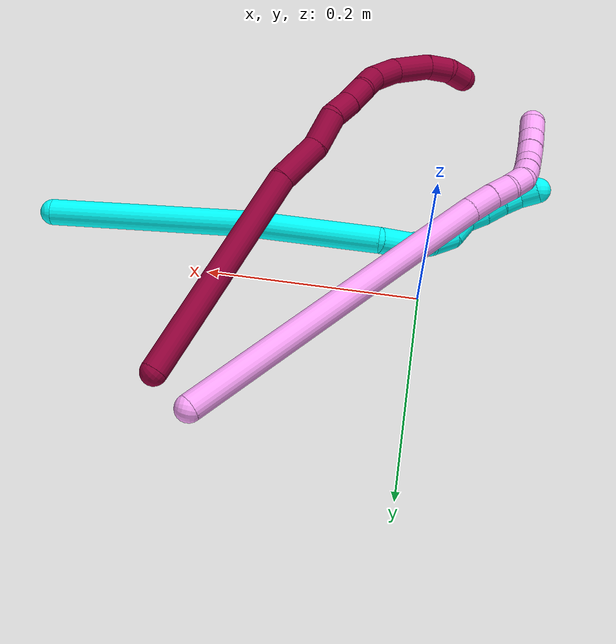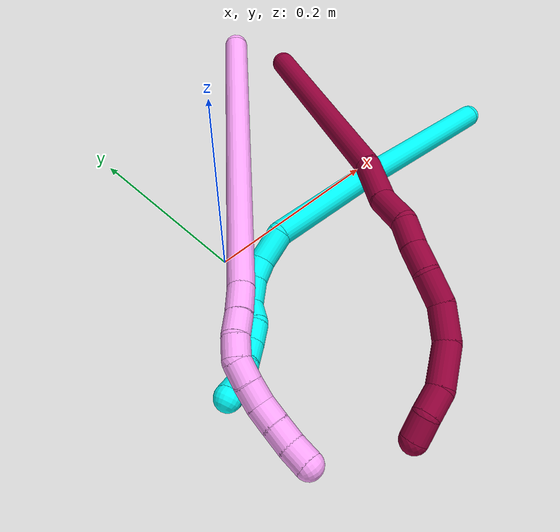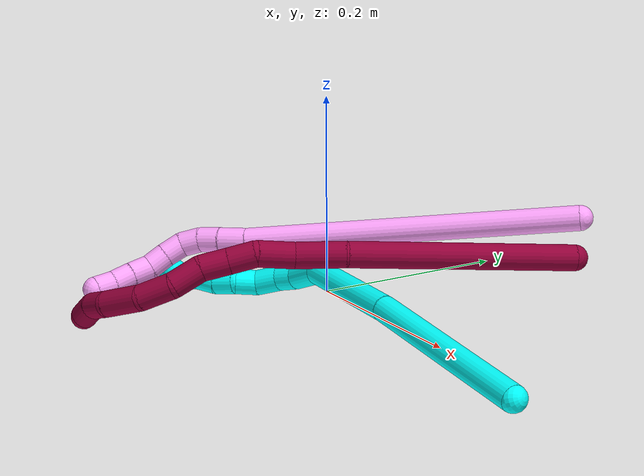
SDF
<sdf version="1.7">
 <world name="default">
  <model name="bin">
   <static>1</static>
   <link name="bottom">
    <collision name="collision-bottom">
     <pose>0 0 -0.01 0 -0 0</pose>
     <geometry><box><size>0.8 0.6 0.02</size></box></geometry>
     <surface>
      <friction><ode><mu>100</mu><mu2>100</mu2></ode></friction>
      <contact><collide_bitmask>65535</collide_bitmask></contact>
     </surface>
    </collision>
   </link>
   <link name="west_wall">
    <collision name="collision-west_wall">
     <pose>-0.41 0 0.1 0 -0 0</pose>
     <geometry><box><size>0.02 0.6 0.2</size></box></geometry>
     <surface>
      <friction><ode><mu>100</mu><mu2>100</mu2></ode></friction>
      <contact><collide_bitmask>65535</collide_bitmask></contact>
     </surface>
    </collision>
   </link>
   <link name="east_wall">
    <collision name="collision-east_wall">
     <pose>0.41 0 0.1 0 -0 0</pose>
     <geometry><box><size>0.02 0.6 0.2</size></box></geometry>
     <surface>
      <friction><ode><mu>100</mu><mu2>100</mu2></ode></friction>
      <contact><collide_bitmask>65535</collide_bitmask></contact>
     </surface>
    </collision>
   </link>
   <link name="south_wall">
    <collision name="collision-south_wall">
     <pose>0 -0.31 0.1 0 -0 0</pose>
     <geometry><box><size>0.8 0.02 0.2</size></box></geometry>
     <surface>
      <friction><ode><mu>100</mu><mu2>100</mu2></ode></friction>
      <contact><collide_bitmask>65535</collide_bitmask></contact>
     </surface>
    </collision>
   </link>
   <link name="north_wall">
    <collision name="collision-north_wall">
     <pose>0 0.31 0.1 0 -0 0</pose>
     <geometry><box><size>0.8 0.02 0.2</size></box></geometry>
     <surface>
      <friction><ode><mu>100</mu><mu2>100</mu2></ode></friction>
      <contact><collide_bitmask>65535</collide_bitmask></contact>
     </surface>
    </collision>
   </link>
  </model>
  <model name="3">
   <static>0</static>
   <link name="3">
    <collision name="collision-cylinder-e_1_1_4">
     <pose>-0.049913 0.018921 -0.081487 -2.91344 -0.537953 2.35376</pose>
     <geometry><cylinder><radius>0.0125</radius><length>0.194827</length></cylinder></geometry>
     <surface>
      <friction><ode><mu>1.16</mu><mu2>1.16</mu2><slip1>0</slip1><slip2>0</slip2></ode></friction>
      <contact><ode><kp>1e+06</kp><kd>1</kd><max_vel>0</max_vel><min_depth>0.001</min_depth></ode></contact>
     </surface>
    </collision>
    <visual name="visual-cylinder-e_1_1_4">
     <pose>-0.049913 0.018921 -0.081487 -2.91344 -0.537953 2.35376</pose>
     <geometry><cylinder><radius>0.0125</radius><length>0.194827</length></cylinder></geometry>
     <material><ambient>0.003922 1 0.996078 1</ambient></material>
    </visual>
    <collision name="collision-cylinder-e_2_4_5">
     <pose>-0.126553 0.052378 -0.21639 -2.8759 -0.4498 2.08424</pose>
     <geometry><cylinder><radius>0.0125</radius><length>0.122946</length></cylinder></geometry>
     <surface>
      <friction><ode><mu>1.16</mu><mu2>1.16</mu2><slip1>0</slip1><slip2>0</slip2></ode></friction>
      <contact><ode><kp>1e+06</kp><kd>1</kd><max_vel>0</max_vel><min_depth>0.001</min_depth></ode></contact>
     </surface>
    </collision>
    <visual name="visual-cylinder-e_2_4_5">
     <pose>-0.126553 0.052378 -0.21639 -2.8759 -0.4498 2.08424</pose>
     <geometry><cylinder><radius>0.0125</radius><length>0.122946</length></cylinder></geometry>
     <material><ambient>0.003922 1 0.996078 1</ambient></material>
    </visual>
    <collision name="collision-cylinder-e_3_5_6">
     <pose>-0.153299 0.069143 -0.285978 -3.00466 -0.001099 0.016027</pose>
     <geometry><cylinder><radius>0.0125</radius><length>0.03265</length></cylinder></geometry>
     <surface>
      <friction><ode><mu>1.16</mu><mu2>1.16</mu2><slip1>0</slip1><slip2>0</slip2></ode></friction>
      <contact><ode><kp>1e+06</kp><kd>1</kd><max_vel>0</max_vel><min_depth>0.001</min_depth></ode></contact>
     </surface>
    </collision>
    <visual name="visual-cylinder-e_3_5_6">
     <pose>-0.153299 0.069143 -0.285978 -3.00466 -0.001099 0.016027</pose>
     <geometry><cylinder><radius>0.0125</radius><length>0.03265</length></cylinder></geometry>
     <material><ambient>0.003922 1 0.996078 1</ambient></material>
    </visual>
    <collision name="collision-cylinder-e_4_6_7">
     <pose>-0.154217 0.070141 -0.312356 3.02164 -0.087404 -1.25888</pose>
     <geometry><cylinder><radius>0.0125</radius><length>0.020639</length></cylinder></geometry>
     <surface>
      <friction><ode><mu>1.16</mu><mu2>1.16</mu2><slip1>0</slip1><slip2>0</slip2></ode></friction>
      <contact><ode><kp>1e+06</kp><kd>1</kd><max_vel>0</max_vel><min_depth>0.001</min_depth></ode></contact>
     </surface>
    </collision>
    <visual name="visual-cylinder-e_4_6_7">
     <pose>-0.154217 0.070141 -0.312356 3.02164 -0.087404 -1.25888</pose>
     <geometry><cylinder><radius>0.0125</radius><length>0.020639</length></cylinder></geometry>
     <material><ambient>0.003922 1 0.996078 1</ambient></material>
    </visual>
    <collision name="collision-cylinder-e_5_7_8">
     <pose>-0.154646 0.06493 -0.334745 2.82575 0.036788 0.230017</pose>
     <geometry><cylinder><radius>0.0125</radius><length>0.02565</length></cylinder></geometry>
     <surface>
      <friction><ode><mu>1.16</mu><mu2>1.16</mu2><slip1>0</slip1><slip2>0</slip2></ode></friction>
      <contact><ode><kp>1e+06</kp><kd>1</kd><max_vel>0</max_vel><min_depth>0.001</min_depth></ode></contact>
     </surface>
    </collision>
    <visual name="visual-cylinder-e_5_7_8">
     <pose>-0.154646 0.06493 -0.334745 2.82575 0.036788 0.230017</pose>
     <geometry><cylinder><radius>0.0125</radius><length>0.02565</length></cylinder></geometry>
     <material><ambient>0.003922 1 0.996078 1</ambient></material>
    </visual>
    <collision name="collision-cylinder-e_6_8_9">
     <pose>-0.15569 0.053146 -0.35451 2.34193 -0.138337 -0.324986</pose>
     <geometry><cylinder><radius>0.0125</radius><length>0.021971</length></cylinder></geometry>
     <surface>
      <friction><ode><mu>1.16</mu><mu2>1.16</mu2><slip1>0</slip1><slip2>0</slip2></ode></friction>
      <contact><ode><kp>1e+06</kp><kd>1</kd><max_vel>0</max_vel><min_depth>0.001</min_depth></ode></contact>
     </surface>
    </collision>
    <visual name="visual-cylinder-e_6_8_9">
     <pose>-0.15569 0.053146 -0.35451 2.34193 -0.138337 -0.324986</pose>
     <geometry><cylinder><radius>0.0125</radius><length>0.021971</length></cylinder></geometry>
     <material><ambient>0.003922 1 0.996078 1</ambient></material>
    </visual>
    <collision name="collision-cylinder-e_7_9_10">
     <pose>-0.15859 0.041814 -0.371982 2.79876 -0.131156 -0.725164</pose>
     <geometry><cylinder><radius>0.0125</radius><length>0.021181</length></cylinder></geometry>
     <surface>
      <friction><ode><mu>1.16</mu><mu2>1.16</mu2><slip1>0</slip1><slip2>0</slip2></ode></friction>
      <contact><ode><kp>1e+06</kp><kd>1</kd><max_vel>0</max_vel><min_depth>0.001</min_depth></ode></contact>
     </surface>
    </collision>
    <visual name="visual-cylinder-e_7_9_10">
     <pose>-0.15859 0.041814 -0.371982 2.79876 -0.131156 -0.725164</pose>
     <geometry><cylinder><radius>0.0125</radius><length>0.021181</length></cylinder></geometry>
     <material><ambient>0.003922 1 0.996078 1</ambient></material>
    </visual>
    <collision name="collision-cylinder-e_8_10_11">
     <pose>-0.163645 0.034291 -0.390338 2.70088 -0.373657 -1.40191</pose>
     <geometry><cylinder><radius>0.0125</radius><length>0.020112</length></cylinder></geometry>
     <surface>
      <friction><ode><mu>1.16</mu><mu2>1.16</mu2><slip1>0</slip1><slip2>0</slip2></ode></friction>
      <contact><ode><kp>1e+06</kp><kd>1</kd><max_vel>0</max_vel><min_depth>0.001</min_depth></ode></contact>
     </surface>
    </collision>
    <visual name="visual-cylinder-e_8_10_11">
     <pose>-0.163645 0.034291 -0.390338 2.70088 -0.373657 -1.40191</pose>
     <geometry><cylinder><radius>0.0125</radius><length>0.020112</length></cylinder></geometry>
     <material><ambient>0.003922 1 0.996078 1</ambient></material>
    </visual>
    <collision name="collision-cylinder-e_9_11_12">
     <pose>-0.169108 0.026731 -0.407982 2.77096 -0.180124 -0.897819</pose>
     <geometry><cylinder><radius>0.0125</radius><length>0.020013</length></cylinder></geometry>
     <surface>
      <friction><ode><mu>1.16</mu><mu2>1.16</mu2><slip1>0</slip1><slip2>0</slip2></ode></friction>
      <contact><ode><kp>1e+06</kp><kd>1</kd><max_vel>0</max_vel><min_depth>0.001</min_depth></ode></contact>
     </surface>
    </collision>
    <visual name="visual-cylinder-e_9_11_12">
     <pose>-0.169108 0.026731 -0.407982 2.77096 -0.180124 -0.897819</pose>
     <geometry><cylinder><radius>0.0125</radius><length>0.020013</length></cylinder></geometry>
     <material><ambient>0.003922 1 0.996078 1</ambient></material>
    </visual>
    <collision name="collision-cylinder-e_10_12_2">
     <pose>-0.176873 0.021967 -0.425096 2.99179 -0.639542 -2.69587</pose>
     <geometry><cylinder><radius>0.0125</radius><length>0.020011</length></cylinder></geometry>
     <surface>
      <friction><ode><mu>1.16</mu><mu2>1.16</mu2><slip1>0</slip1><slip2>0</slip2></ode></friction>
      <contact><ode><kp>1e+06</kp><kd>1</kd><max_vel>0</max_vel><min_depth>0.001</min_depth></ode></contact>
     </surface>
    </collision>
    <visual name="visual-cylinder-e_10_12_2">
     <pose>-0.176873 0.021967 -0.425096 2.99179 -0.639542 -2.69587</pose>
     <geometry><cylinder><radius>0.0125</radius><length>0.020011</length></cylinder></geometry>
     <material><ambient>0.003922 1 0.996078 1</ambient></material>
    </visual>
    <collision name="collision-sphere-2">
     <pose>-0.182845 0.020769 -0.433035 0 -0 0</pose>
     <geometry><sphere><radius>0.0125</radius></sphere></geometry>
     <surface>
      <friction><ode><mu>1.16</mu><mu2>1.16</mu2><slip1>0</slip1><slip2>0</slip2></ode></friction>
      <contact><ode><kp>1e+06</kp><kd>1</kd><max_vel>0</max_vel><min_depth>0.001</min_depth></ode></contact>
     </surface>
    </collision>
    <visual name="visual-sphere-2">
     <pose>-0.182845 0.020769 -0.433035 0 -0 0</pose>
     <geometry><sphere><radius>0.0125</radius></sphere></geometry>
     <material><ambient>0.003922 1 0.996078 1</ambient></material>
    </visual>
    <collision name="collision-sphere-12">
     <pose>-0.170901 0.023166 -0.417158 0 -0 0</pose>
     <geometry><sphere><radius>0.0125</radius></sphere></geometry>
     <surface>
      <friction><ode><mu>1.16</mu><mu2>1.16</mu2><slip1>0</slip1><slip2>0</slip2></ode></friction>
      <contact><ode><kp>1e+06</kp><kd>1</kd><max_vel>0</max_vel><min_depth>0.001</min_depth></ode></contact>
     </surface>
    </collision>
    <visual name="visual-sphere-12">
     <pose>-0.170901 0.023166 -0.417158 0 -0 0</pose>
     <geometry><sphere><radius>0.0125</radius></sphere></geometry>
     <material><ambient>0.003922 1 0.996078 1</ambient></material>
    </visual>
    <collision name="collision-sphere-11">
     <pose>-0.167316 0.030297 -0.398805 0 -0 0</pose>
     <geometry><sphere><radius>0.0125</radius></sphere></geometry>
     <surface>
      <friction><ode><mu>1.16</mu><mu2>1.16</mu2><slip1>0</slip1><slip2>0</slip2></ode></friction>
      <contact><ode><kp>1e+06</kp><kd>1</kd><max_vel>0</max_vel><min_depth>0.001</min_depth></ode></contact>
     </surface>
    </collision>
    <visual name="visual-sphere-11">
     <pose>-0.167316 0.030297 -0.398805 0 -0 0</pose>
     <geometry><sphere><radius>0.0125</radius></sphere></geometry>
     <material><ambient>0.003922 1 0.996078 1</ambient></material>
    </visual>
    <collision name="collision-sphere-10">
     <pose>-0.159975 0.038285 -0.381871 0 -0 0</pose>
     <geometry><sphere><radius>0.0125</radius></sphere></geometry>
     <surface>
      <friction><ode><mu>1.16</mu><mu2>1.16</mu2><slip1>0</slip1><slip2>0</slip2></ode></friction>
      <contact><ode><kp>1e+06</kp><kd>1</kd><max_vel>0</max_vel><min_depth>0.001</min_depth></ode></contact>
     </surface>
    </collision>
    <visual name="visual-sphere-10">
     <pose>-0.159975 0.038285 -0.381871 0 -0 0</pose>
     <geometry><sphere><radius>0.0125</radius></sphere></geometry>
     <material><ambient>0.003922 1 0.996078 1</ambient></material>
    </visual>
    <collision name="collision-sphere-9">
     <pose>-0.157204 0.045344 -0.362093 0 -0 0</pose>
     <geometry><sphere><radius>0.0125</radius></sphere></geometry>
     <surface>
      <friction><ode><mu>1.16</mu><mu2>1.16</mu2><slip1>0</slip1><slip2>0</slip2></ode></friction>
      <contact><ode><kp>1e+06</kp><kd>1</kd><max_vel>0</max_vel><min_depth>0.001</min_depth></ode></contact>
     </surface>
    </collision>
    <visual name="visual-sphere-9">
     <pose>-0.157204 0.045344 -0.362093 0 -0 0</pose>
     <geometry><sphere><radius>0.0125</radius></sphere></geometry>
     <material><ambient>0.003922 1 0.996078 1</ambient></material>
    </visual>
    <collision name="collision-sphere-4">
     <pose>-0.099825 0.037842 -0.162974 0 -0 0</pose>
     <geometry><sphere><radius>0.0125</radius></sphere></geometry>
     <surface>
      <friction><ode><mu>1.16</mu><mu2>1.16</mu2><slip1>0</slip1><slip2>0</slip2></ode></friction>
      <contact><ode><kp>1e+06</kp><kd>1</kd><max_vel>0</max_vel><min_depth>0.001</min_depth></ode></contact>
     </surface>
    </collision>
    <visual name="visual-sphere-4">
     <pose>-0.099825 0.037842 -0.162974 0 -0 0</pose>
     <geometry><sphere><radius>0.0125</radius></sphere></geometry>
     <material><ambient>0.003922 1 0.996078 1</ambient></material>
    </visual>
    <collision name="collision-sphere-1">
     <geometry><sphere><radius>0.0125</radius></sphere></geometry>
     <surface>
      <friction><ode><mu>1.16</mu><mu2>1.16</mu2><slip1>0</slip1><slip2>0</slip2></ode></friction>
      <contact><ode><kp>1e+06</kp><kd>1</kd><max_vel>0</max_vel><min_depth>0.001</min_depth></ode></contact>
     </surface>
    </collision>
    <visual name="visual-sphere-1">
     <geometry><sphere><radius>0.0125</radius></sphere></geometry>
     <material><ambient>0.003922 1 0.996078 1</ambient></material>
    </visual>
    <collision name="collision-sphere-8">
     <pose>-0.154175 0.060949 -0.346927 0 -0 0</pose>
     <geometry><sphere><radius>0.0125</radius></sphere></geometry>
     <surface>
      <friction><ode><mu>1.16</mu><mu2>1.16</mu2><slip1>0</slip1><slip2>0</slip2></ode></friction>
      <contact><ode><kp>1e+06</kp><kd>1</kd><max_vel>0</max_vel><min_depth>0.001</min_depth></ode></contact>
     </surface>
    </collision>
    <visual name="visual-sphere-8">
     <pose>-0.154175 0.060949 -0.346927 0 -0 0</pose>
     <geometry><sphere><radius>0.0125</radius></sphere></geometry>
     <material><ambient>0.003922 1 0.996078 1</ambient></material>
    </visual>
    <collision name="collision-sphere-5">
     <pose>-0.153281 0.066914 -0.269806 0 -0 0</pose>
     <geometry><sphere><radius>0.0125</radius></sphere></geometry>
     <surface>
      <friction><ode><mu>1.16</mu><mu2>1.16</mu2><slip1>0</slip1><slip2>0</slip2></ode></friction>
      <contact><ode><kp>1e+06</kp><kd>1</kd><max_vel>0</max_vel><min_depth>0.001</min_depth></ode></contact>
     </surface>
    </collision>
    <visual name="visual-sphere-5">
     <pose>-0.153281 0.066914 -0.269806 0 -0 0</pose>
     <geometry><sphere><radius>0.0125</radius></sphere></geometry>
     <material><ambient>0.003922 1 0.996078 1</ambient></material>
    </visual>
    <collision name="collision-sphere-6">
     <pose>-0.153317 0.071371 -0.30215 0 -0 0</pose>
     <geometry><sphere><radius>0.0125</radius></sphere></geometry>
     <surface>
      <friction><ode><mu>1.16</mu><mu2>1.16</mu2><slip1>0</slip1><slip2>0</slip2></ode></friction>
      <contact><ode><kp>1e+06</kp><kd>1</kd><max_vel>0</max_vel><min_depth>0.001</min_depth></ode></contact>
     </surface>
    </collision>
    <visual name="visual-sphere-6">
     <pose>-0.153317 0.071371 -0.30215 0 -0 0</pose>
     <geometry><sphere><radius>0.0125</radius></sphere></geometry>
     <material><ambient>0.003922 1 0.996078 1</ambient></material>
    </visual>
    <collision name="collision-sphere-7">
     <pose>-0.155118 0.068911 -0.322563 0 -0 0</pose>
     <geometry><sphere><radius>0.0125</radius></sphere></geometry>
     <surface>
      <friction><ode><mu>1.16</mu><mu2>1.16</mu2><slip1>0</slip1><slip2>0</slip2></ode></friction>
      <contact><ode><kp>1e+06</kp><kd>1</kd><max_vel>0</max_vel><min_depth>0.001</min_depth></ode></contact>
     </surface>
    </collision>
    <visual name="visual-sphere-7">
     <pose>-0.155118 0.068911 -0.322563 0 -0 0</pose>
     <geometry><sphere><radius>0.0125</radius></sphere></geometry>
     <material><ambient>0.003922 1 0.996078 1</ambient></material>
    </visual>
    <inertial>
     <pose>-0.108866 0.038428 -0.21408 0 -0 0</pose>
     <mass>0.5</mass>
     <inertia>
      <ixx>4.7e-05</ixx>
      <ixy>0</ixy>
      <ixz>0</ixz>
      <iyy>0.001064</iyy>
      <iyz>0</iyz>
      <izz>0.000202</izz>
     </inertia>
    </inertial>
   </link>
   <pose>0.358483 -0.038066 0.011488 -0.608325 1.1259 -0.324609</pose>
  </model>
  <model name="4">
   <static>0</static>
   <link name="4">
    <collision name="collision-cylinder-e_1_1_4">
     <pose>-0.075707 -0.108644 0.099093 0.831338 -0.475456 -0.213096</pose>
     <geometry><cylinder><radius>0.0125</radius><length>0.330784</length></cylinder></geometry>
     <surface>
      <friction><ode><mu>1.16</mu><mu2>1.16</mu2><slip1>0</slip1><slip2>0</slip2></ode></friction>
      <contact><ode><kp>1e+06</kp><kd>1</kd><max_vel>0</max_vel><min_depth>0.001</min_depth></ode></contact>
     </surface>
    </collision>
    <visual name="visual-cylinder-e_1_1_4">
     <pose>-0.075707 -0.108644 0.099093 0.831338 -0.475456 -0.213096</pose>
     <geometry><cylinder><radius>0.0125</radius><length>0.330784</length></cylinder></geometry>
     <material><ambient>1 0.65098 0.996078 1</ambient></material>
    </visual>
    <collision name="collision-cylinder-e_2_4_5">
     <pose>-0.156444 -0.226267 0.20717 0.785189 -0.377009 -0.157664</pose>
     <geometry><cylinder><radius>0.0125</radius><length>0.027324</length></cylinder></geometry>
     <surface>
      <friction><ode><mu>1.16</mu><mu2>1.16</mu2><slip1>0</slip1><slip2>0</slip2></ode></friction>
      <contact><ode><kp>1e+06</kp><kd>1</kd><max_vel>0</max_vel><min_depth>0.001</min_depth></ode></contact>
     </surface>
    </collision>
    <visual name="visual-cylinder-e_2_4_5">
     <pose>-0.156444 -0.226267 0.20717 0.785189 -0.377009 -0.157664</pose>
     <geometry><cylinder><radius>0.0125</radius><length>0.027324</length></cylinder></geometry>
     <material><ambient>1 0.65098 0.996078 1</ambient></material>
    </visual>
    <collision name="collision-cylinder-e_3_5_6">
     <pose>-0.165422 -0.241646 0.223753 0.69988 -0.378386 -0.139541</pose>
     <geometry><cylinder><radius>0.0125</radius><length>0.02138</length></cylinder></geometry>
     <surface>
      <friction><ode><mu>1.16</mu><mu2>1.16</mu2><slip1>0</slip1><slip2>0</slip2></ode></friction>
      <contact><ode><kp>1e+06</kp><kd>1</kd><max_vel>0</max_vel><min_depth>0.001</min_depth></ode></contact>
     </surface>
    </collision>
    <visual name="visual-cylinder-e_3_5_6">
     <pose>-0.165422 -0.241646 0.223753 0.69988 -0.378386 -0.139541</pose>
     <geometry><cylinder><radius>0.0125</radius><length>0.02138</length></cylinder></geometry>
     <material><ambient>1 0.65098 0.996078 1</ambient></material>
    </visual>
    <collision name="collision-cylinder-e_4_6_7">
     <pose>-0.175478 -0.253644 0.237211 0.762716 -0.645728 -0.266725</pose>
     <geometry><cylinder><radius>0.0125</radius><length>0.020295</length></cylinder></geometry>
     <surface>
      <friction><ode><mu>1.16</mu><mu2>1.16</mu2><slip1>0</slip1><slip2>0</slip2></ode></friction>
      <contact><ode><kp>1e+06</kp><kd>1</kd><max_vel>0</max_vel><min_depth>0.001</min_depth></ode></contact>
     </surface>
    </collision>
    <visual name="visual-cylinder-e_4_6_7">
     <pose>-0.175478 -0.253644 0.237211 0.762716 -0.645728 -0.266725</pose>
     <geometry><cylinder><radius>0.0125</radius><length>0.020295</length></cylinder></geometry>
     <material><ambient>1 0.65098 0.996078 1</ambient></material>
    </visual>
    <collision name="collision-cylinder-e_5_7_8">
     <pose>-0.190091 -0.264386 0.244763 1.25265 -1.00394 -0.756014</pose>
     <geometry><cylinder><radius>0.0125</radius><length>0.020168</length></cylinder></geometry>
     <surface>
      <friction><ode><mu>1.16</mu><mu2>1.16</mu2><slip1>0</slip1><slip2>0</slip2></ode></friction>
      <contact><ode><kp>1e+06</kp><kd>1</kd><max_vel>0</max_vel><min_depth>0.001</min_depth></ode></contact>
     </surface>
    </collision>
    <visual name="visual-cylinder-e_5_7_8">
     <pose>-0.190091 -0.264386 0.244763 1.25265 -1.00394 -0.756014</pose>
     <geometry><cylinder><radius>0.0125</radius><length>0.020168</length></cylinder></geometry>
     <material><ambient>1 0.65098 0.996078 1</ambient></material>
    </visual>
    <collision name="collision-cylinder-e_6_8_9">
     <pose>-0.20738 -0.274234 0.247337 1.38594 -1.07178 -0.916235</pose>
     <geometry><cylinder><radius>0.0125</radius><length>0.020004</length></cylinder></geometry>
     <surface>
      <friction><ode><mu>1.16</mu><mu2>1.16</mu2><slip1>0</slip1><slip2>0</slip2></ode></friction>
      <contact><ode><kp>1e+06</kp><kd>1</kd><max_vel>0</max_vel><min_depth>0.001</min_depth></ode></contact>
     </surface>
    </collision>
    <visual name="visual-cylinder-e_6_8_9">
     <pose>-0.20738 -0.274234 0.247337 1.38594 -1.07178 -0.916235</pose>
     <geometry><cylinder><radius>0.0125</radius><length>0.020004</length></cylinder></geometry>
     <material><ambient>1 0.65098 0.996078 1</ambient></material>
    </visual>
    <collision name="collision-cylinder-e_7_9_10">
     <pose>-0.22324 -0.286008 0.248496 1.53131 -0.785584 -0.758042</pose>
     <geometry><cylinder><radius>0.0125</radius><length>0.020015</length></cylinder></geometry>
     <surface>
      <friction><ode><mu>1.16</mu><mu2>1.16</mu2><slip1>0</slip1><slip2>0</slip2></ode></friction>
      <contact><ode><kp>1e+06</kp><kd>1</kd><max_vel>0</max_vel><min_depth>0.001</min_depth></ode></contact>
     </surface>
    </collision>
    <visual name="visual-cylinder-e_7_9_10">
     <pose>-0.22324 -0.286008 0.248496 1.53131 -0.785584 -0.758042</pose>
     <geometry><cylinder><radius>0.0125</radius><length>0.020015</length></cylinder></geometry>
     <material><ambient>1 0.65098 0.996078 1</ambient></material>
    </visual>
    <collision name="collision-cylinder-e_8_10_11">
     <pose>-0.237749 -0.299781 0.248827 1.56302 -0.836866 -0.831104</pose>
     <geometry><cylinder><radius>0.0125</radius><length>0.020015</length></cylinder></geometry>
     <surface>
      <friction><ode><mu>1.16</mu><mu2>1.16</mu2><slip1>0</slip1><slip2>0</slip2></ode></friction>
      <contact><ode><kp>1e+06</kp><kd>1</kd><max_vel>0</max_vel><min_depth>0.001</min_depth></ode></contact>
     </surface>
    </collision>
    <visual name="visual-cylinder-e_8_10_11">
     <pose>-0.237749 -0.299781 0.248827 1.56302 -0.836866 -0.831104</pose>
     <geometry><cylinder><radius>0.0125</radius><length>0.020015</length></cylinder></geometry>
     <material><ambient>1 0.65098 0.996078 1</ambient></material>
    </visual>
    <collision name="collision-cylinder-e_9_11_2">
     <pose>-0.251488 -0.314238 0.248397 1.63294 -0.681932 -0.722074</pose>
     <geometry><cylinder><radius>0.0125</radius><length>0.020016</length></cylinder></geometry>
     <surface>
      <friction><ode><mu>1.16</mu><mu2>1.16</mu2><slip1>0</slip1><slip2>0</slip2></ode></friction>
      <contact><ode><kp>1e+06</kp><kd>1</kd><max_vel>0</max_vel><min_depth>0.001</min_depth></ode></contact>
     </surface>
    </collision>
    <visual name="visual-cylinder-e_9_11_2">
     <pose>-0.251488 -0.314238 0.248397 1.63294 -0.681932 -0.722074</pose>
     <geometry><cylinder><radius>0.0125</radius><length>0.020016</length></cylinder></geometry>
     <material><ambient>1 0.65098 0.996078 1</ambient></material>
    </visual>
    <collision name="collision-sphere-2">
     <pose>-0.257796 -0.321993 0.247915 0 -0 0</pose>
     <geometry><sphere><radius>0.0125</radius></sphere></geometry>
     <surface>
      <friction><ode><mu>1.16</mu><mu2>1.16</mu2><slip1>0</slip1><slip2>0</slip2></ode></friction>
      <contact><ode><kp>1e+06</kp><kd>1</kd><max_vel>0</max_vel><min_depth>0.001</min_depth></ode></contact>
     </surface>
    </collision>
    <visual name="visual-sphere-2">
     <pose>-0.257796 -0.321993 0.247915 0 -0 0</pose>
     <geometry><sphere><radius>0.0125</radius></sphere></geometry>
     <material><ambient>1 0.65098 0.996078 1</ambient></material>
    </visual>
    <collision name="collision-sphere-11">
     <pose>-0.24518 -0.306483 0.24888 0 -0 0</pose>
     <geometry><sphere><radius>0.0125</radius></sphere></geometry>
     <surface>
      <friction><ode><mu>1.16</mu><mu2>1.16</mu2><slip1>0</slip1><slip2>0</slip2></ode></friction>
      <contact><ode><kp>1e+06</kp><kd>1</kd><max_vel>0</max_vel><min_depth>0.001</min_depth></ode></contact>
     </surface>
    </collision>
    <visual name="visual-sphere-11">
     <pose>-0.24518 -0.306483 0.24888 0 -0 0</pose>
     <geometry><sphere><radius>0.0125</radius></sphere></geometry>
     <material><ambient>1 0.65098 0.996078 1</ambient></material>
    </visual>
    <collision name="collision-sphere-10">
     <pose>-0.230318 -0.293078 0.248775 0 -0 0</pose>
     <geometry><sphere><radius>0.0125</radius></sphere></geometry>
     <surface>
      <friction><ode><mu>1.16</mu><mu2>1.16</mu2><slip1>0</slip1><slip2>0</slip2></ode></friction>
      <contact><ode><kp>1e+06</kp><kd>1</kd><max_vel>0</max_vel><min_depth>0.001</min_depth></ode></contact>
     </surface>
    </collision>
    <visual name="visual-sphere-10">
     <pose>-0.230318 -0.293078 0.248775 0 -0 0</pose>
     <geometry><sphere><radius>0.0125</radius></sphere></geometry>
     <material><ambient>1 0.65098 0.996078 1</ambient></material>
    </visual>
    <collision name="collision-sphere-9">
     <pose>-0.216162 -0.278939 0.248217 0 -0 0</pose>
     <geometry><sphere><radius>0.0125</radius></sphere></geometry>
     <surface>
      <friction><ode><mu>1.16</mu><mu2>1.16</mu2><slip1>0</slip1><slip2>0</slip2></ode></friction>
      <contact><ode><kp>1e+06</kp><kd>1</kd><max_vel>0</max_vel><min_depth>0.001</min_depth></ode></contact>
     </surface>
    </collision>
    <visual name="visual-sphere-9">
     <pose>-0.216162 -0.278939 0.248217 0 -0 0</pose>
     <geometry><sphere><radius>0.0125</radius></sphere></geometry>
     <material><ambient>1 0.65098 0.996078 1</ambient></material>
    </visual>
    <collision name="collision-sphere-4">
     <pose>-0.151414 -0.217287 0.198187 0 -0 0</pose>
     <geometry><sphere><radius>0.0125</radius></sphere></geometry>
     <surface>
      <friction><ode><mu>1.16</mu><mu2>1.16</mu2><slip1>0</slip1><slip2>0</slip2></ode></friction>
      <contact><ode><kp>1e+06</kp><kd>1</kd><max_vel>0</max_vel><min_depth>0.001</min_depth></ode></contact>
     </surface>
    </collision>
    <visual name="visual-sphere-4">
     <pose>-0.151414 -0.217287 0.198187 0 -0 0</pose>
     <geometry><sphere><radius>0.0125</radius></sphere></geometry>
     <material><ambient>1 0.65098 0.996078 1</ambient></material>
    </visual>
    <collision name="collision-sphere-1">
     <geometry><sphere><radius>0.0125</radius></sphere></geometry>
     <surface>
      <friction><ode><mu>1.16</mu><mu2>1.16</mu2><slip1>0</slip1><slip2>0</slip2></ode></friction>
      <contact><ode><kp>1e+06</kp><kd>1</kd><max_vel>0</max_vel><min_depth>0.001</min_depth></ode></contact>
     </surface>
    </collision>
    <visual name="visual-sphere-1">
     <geometry><sphere><radius>0.0125</radius></sphere></geometry>
     <material><ambient>1 0.65098 0.996078 1</ambient></material>
    </visual>
    <collision name="collision-sphere-8">
     <pose>-0.198598 -0.269529 0.246457 0 -0 0</pose>
     <geometry><sphere><radius>0.0125</radius></sphere></geometry>
     <surface>
      <friction><ode><mu>1.16</mu><mu2>1.16</mu2><slip1>0</slip1><slip2>0</slip2></ode></friction>
      <contact><ode><kp>1e+06</kp><kd>1</kd><max_vel>0</max_vel><min_depth>0.001</min_depth></ode></contact>
     </surface>
    </collision>
    <visual name="visual-sphere-8">
     <pose>-0.198598 -0.269529 0.246457 0 -0 0</pose>
     <geometry><sphere><radius>0.0125</radius></sphere></geometry>
     <material><ambient>1 0.65098 0.996078 1</ambient></material>
    </visual>
    <collision name="collision-sphere-5">
     <pose>-0.161473 -0.235247 0.216154 0 -0 0</pose>
     <geometry><sphere><radius>0.0125</radius></sphere></geometry>
     <surface>
      <friction><ode><mu>1.16</mu><mu2>1.16</mu2><slip1>0</slip1><slip2>0</slip2></ode></friction>
      <contact><ode><kp>1e+06</kp><kd>1</kd><max_vel>0</max_vel><min_depth>0.001</min_depth></ode></contact>
     </surface>
    </collision>
    <visual name="visual-sphere-5">
     <pose>-0.161473 -0.235247 0.216154 0 -0 0</pose>
     <geometry><sphere><radius>0.0125</radius></sphere></geometry>
     <material><ambient>1 0.65098 0.996078 1</ambient></material>
    </visual>
    <collision name="collision-sphere-6">
     <pose>-0.169372 -0.248044 0.231351 0 -0 0</pose>
     <geometry><sphere><radius>0.0125</radius></sphere></geometry>
     <surface>
      <friction><ode><mu>1.16</mu><mu2>1.16</mu2><slip1>0</slip1><slip2>0</slip2></ode></friction>
      <contact><ode><kp>1e+06</kp><kd>1</kd><max_vel>0</max_vel><min_depth>0.001</min_depth></ode></contact>
     </surface>
    </collision>
    <visual name="visual-sphere-6">
     <pose>-0.169372 -0.248044 0.231351 0 -0 0</pose>
     <geometry><sphere><radius>0.0125</radius></sphere></geometry>
     <material><ambient>1 0.65098 0.996078 1</ambient></material>
    </visual>
    <collision name="collision-sphere-7">
     <pose>-0.181584 -0.259243 0.24307 0 -0 0</pose>
     <geometry><sphere><radius>0.0125</radius></sphere></geometry>
     <surface>
      <friction><ode><mu>1.16</mu><mu2>1.16</mu2><slip1>0</slip1><slip2>0</slip2></ode></friction>
      <contact><ode><kp>1e+06</kp><kd>1</kd><max_vel>0</max_vel><min_depth>0.001</min_depth></ode></contact>
     </surface>
    </collision>
    <visual name="visual-sphere-7">
     <pose>-0.181584 -0.259243 0.24307 0 -0 0</pose>
     <geometry><sphere><radius>0.0125</radius></sphere></geometry>
     <material><ambient>1 0.65098 0.996078 1</ambient></material>
    </visual>
    <inertial>
     <pose>-0.117316 -0.162532 0.145694 0 -0 0</pose>
     <mass>0.5</mass>
     <inertia>
      <ixx>0.002047</ixx>
      <ixy>0</ixy>
      <ixz>0</ixz>
      <iyy>0.001622</iyy>
      <iyz>0</iyz>
      <izz>0.003412</izz>
     </inertia>
    </inertial>
   </link>
   <pose>0.178667 0.176809 0.093076 -1.74373 -1.03513 1.63911</pose>
  </model>
  <model name="8">
   <static>0</static>
   <link name="8">
    <collision name="collision-cylinder-e_1_1_4">
     <pose>-0.071344 -0.079911 -0.015394 1.7611 -0.719778 -0.855134</pose>
     <geometry><cylinder><radius>0.0125</radius><length>0.216452</length></cylinder></geometry>
     <surface>
      <friction><ode><mu>1.16</mu><mu2>1.16</mu2><slip1>0</slip1><slip2>0</slip2></ode></friction>
      <contact><ode><kp>1e+06</kp><kd>1</kd><max_vel>0</max_vel><min_depth>0.001</min_depth></ode></contact>
     </surface>
    </collision>
    <visual name="visual-cylinder-e_1_1_4">
     <pose>-0.071344 -0.079911 -0.015394 1.7611 -0.719778 -0.855134</pose>
     <geometry><cylinder><radius>0.0125</radius><length>0.216452</length></cylinder></geometry>
     <material><ambient>0.584314 0 0.227451 1</ambient></material>
    </visual>
    <collision name="collision-cylinder-e_2_4_5">
     <pose>-0.158799 -0.177593 -0.029326 1.48868 -0.734772 -0.681329</pose>
     <geometry><cylinder><radius>0.0125</radius><length>0.048061</length></cylinder></geometry>
     <surface>
      <friction><ode><mu>1.16</mu><mu2>1.16</mu2><slip1>0</slip1><slip2>0</slip2></ode></friction>
      <contact><ode><kp>1e+06</kp><kd>1</kd><max_vel>0</max_vel><min_depth>0.001</min_depth></ode></contact>
     </surface>
    </collision>
    <visual name="visual-cylinder-e_2_4_5">
     <pose>-0.158799 -0.177593 -0.029326 1.48868 -0.734772 -0.681329</pose>
     <geometry><cylinder><radius>0.0125</radius><length>0.048061</length></cylinder></geometry>
     <material><ambient>0.584314 0 0.227451 1</ambient></material>
    </visual>
    <collision name="collision-cylinder-e_3_5_6">
     <pose>-0.186205 -0.20858 -0.031668 1.85112 -0.687577 -0.887903</pose>
     <geometry><cylinder><radius>0.0125</radius><length>0.035595</length></cylinder></geometry>
     <surface>
      <friction><ode><mu>1.16</mu><mu2>1.16</mu2><slip1>0</slip1><slip2>0</slip2></ode></friction>
      <contact><ode><kp>1e+06</kp><kd>1</kd><max_vel>0</max_vel><min_depth>0.001</min_depth></ode></contact>
     </surface>
    </collision>
    <visual name="visual-cylinder-e_3_5_6">
     <pose>-0.186205 -0.20858 -0.031668 1.85112 -0.687577 -0.887903</pose>
     <geometry><cylinder><radius>0.0125</radius><length>0.035595</length></cylinder></geometry>
     <material><ambient>0.584314 0 0.227451 1</ambient></material>
    </visual>
    <collision name="collision-cylinder-e_4_6_7">
     <pose>-0.208147 -0.229007 -0.034009 1.37039 -0.966092 -0.80993</pose>
     <geometry><cylinder><radius>0.0125</radius><length>0.025881</length></cylinder></geometry>
     <surface>
      <friction><ode><mu>1.16</mu><mu2>1.16</mu2><slip1>0</slip1><slip2>0</slip2></ode></friction>
      <contact><ode><kp>1e+06</kp><kd>1</kd><max_vel>0</max_vel><min_depth>0.001</min_depth></ode></contact>
     </surface>
    </collision>
    <visual name="visual-cylinder-e_4_6_7">
     <pose>-0.208147 -0.229007 -0.034009 1.37039 -0.966092 -0.80993</pose>
     <geometry><cylinder><radius>0.0125</radius><length>0.025881</length></cylinder></geometry>
     <material><ambient>0.584314 0 0.227451 1</ambient></material>
    </visual>
    <collision name="collision-cylinder-e_5_7_8">
     <pose>-0.22975 -0.243641 -0.032175 1.52109 -0.974686 -0.934116</pose>
     <geometry><cylinder><radius>0.0125</radius><length>0.026481</length></cylinder></geometry>
     <surface>
      <friction><ode><mu>1.16</mu><mu2>1.16</mu2><slip1>0</slip1><slip2>0</slip2></ode></friction>
      <contact><ode><kp>1e+06</kp><kd>1</kd><max_vel>0</max_vel><min_depth>0.001</min_depth></ode></contact>
     </surface>
    </collision>
    <visual name="visual-cylinder-e_5_7_8">
     <pose>-0.22975 -0.243641 -0.032175 1.52109 -0.974686 -0.934116</pose>
     <geometry><cylinder><radius>0.0125</radius><length>0.026481</length></cylinder></geometry>
     <material><ambient>0.584314 0 0.227451 1</ambient></material>
    </visual>
    <collision name="collision-cylinder-e_6_8_9">
     <pose>-0.254814 -0.255337 -0.031247 1.44077 -1.27443 -1.15237</pose>
     <geometry><cylinder><radius>0.0125</radius><length>0.029503</length></cylinder></geometry>
     <surface>
      <friction><ode><mu>1.16</mu><mu2>1.16</mu2><slip1>0</slip1><slip2>0</slip2></ode></friction>
      <contact><ode><kp>1e+06</kp><kd>1</kd><max_vel>0</max_vel><min_depth>0.001</min_depth></ode></contact>
     </surface>
    </collision>
    <visual name="visual-cylinder-e_6_8_9">
     <pose>-0.254814 -0.255337 -0.031247 1.44077 -1.27443 -1.15237</pose>
     <geometry><cylinder><radius>0.0125</radius><length>0.029503</length></cylinder></geometry>
     <material><ambient>0.584314 0 0.227451 1</ambient></material>
    </visual>
    <collision name="collision-cylinder-e_7_9_10">
     <pose>-0.282513 -0.267395 -0.025362 0.970809 -0.963982 -0.538514</pose>
     <geometry><cylinder><radius>0.0125</radius><length>0.033087</length></cylinder></geometry>
     <surface>
      <friction><ode><mu>1.16</mu><mu2>1.16</mu2><slip1>0</slip1><slip2>0</slip2></ode></friction>
      <contact><ode><kp>1e+06</kp><kd>1</kd><max_vel>0</max_vel><min_depth>0.001</min_depth></ode></contact>
     </surface>
    </collision>
    <visual name="visual-cylinder-e_7_9_10">
     <pose>-0.282513 -0.267395 -0.025362 0.970809 -0.963982 -0.538514</pose>
     <geometry><cylinder><radius>0.0125</radius><length>0.033087</length></cylinder></geometry>
     <material><ambient>0.584314 0 0.227451 1</ambient></material>
    </visual>
    <collision name="collision-cylinder-e_8_10_11">
     <pose>-0.308253 -0.286306 -0.008879 0.784015 -0.656948 -0.27995</pose>
     <geometry><cylinder><radius>0.0125</radius><length>0.039792</length></cylinder></geometry>
     <surface>
      <friction><ode><mu>1.16</mu><mu2>1.16</mu2><slip1>0</slip1><slip2>0</slip2></ode></friction>
      <contact><ode><kp>1e+06</kp><kd>1</kd><max_vel>0</max_vel><min_depth>0.001</min_depth></ode></contact>
     </surface>
    </collision>
    <visual name="visual-cylinder-e_8_10_11">
     <pose>-0.308253 -0.286306 -0.008879 0.784015 -0.656948 -0.27995</pose>
     <geometry><cylinder><radius>0.0125</radius><length>0.039792</length></cylinder></geometry>
     <material><ambient>0.584314 0 0.227451 1</ambient></material>
    </visual>
    <collision name="collision-cylinder-e_9_11_12">
     <pose>-0.325112 -0.302925 0.01165 0.530156 -0.408971 -0.112477</pose>
     <geometry><cylinder><radius>0.0125</radius><length>0.023682</length></cylinder></geometry>
     <surface>
      <friction><ode><mu>1.16</mu><mu2>1.16</mu2><slip1>0</slip1><slip2>0</slip2></ode></friction>
      <contact><ode><kp>1e+06</kp><kd>1</kd><max_vel>0</max_vel><min_depth>0.001</min_depth></ode></contact>
     </surface>
    </collision>
    <visual name="visual-cylinder-e_9_11_12">
     <pose>-0.325112 -0.302925 0.01165 0.530156 -0.408971 -0.112477</pose>
     <geometry><cylinder><radius>0.0125</radius><length>0.023682</length></cylinder></geometry>
     <material><ambient>0.584314 0 0.227451 1</ambient></material>
    </visual>
    <collision name="collision-cylinder-e_10_12_2">
     <pose>-0.336106 -0.309604 0.029643 0.136644 -0.62552 -0.044249</pose>
     <geometry><cylinder><radius>0.0125</radius><length>0.021466</length></cylinder></geometry>
     <surface>
      <friction><ode><mu>1.16</mu><mu2>1.16</mu2><slip1>0</slip1><slip2>0</slip2></ode></friction>
      <contact><ode><kp>1e+06</kp><kd>1</kd><max_vel>0</max_vel><min_depth>0.001</min_depth></ode></contact>
     </surface>
    </collision>
    <visual name="visual-cylinder-e_10_12_2">
     <pose>-0.336106 -0.309604 0.029643 0.136644 -0.62552 -0.044249</pose>
     <geometry><cylinder><radius>0.0125</radius><length>0.021466</length></cylinder></geometry>
     <material><ambient>0.584314 0 0.227451 1</ambient></material>
    </visual>
    <collision name="collision-sphere-2">
     <pose>-0.34239 -0.310789 0.038262 0 -0 0</pose>
     <geometry><sphere><radius>0.0125</radius></sphere></geometry>
     <surface>
      <friction><ode><mu>1.16</mu><mu2>1.16</mu2><slip1>0</slip1><slip2>0</slip2></ode></friction>
      <contact><ode><kp>1e+06</kp><kd>1</kd><max_vel>0</max_vel><min_depth>0.001</min_depth></ode></contact>
     </surface>
    </collision>
    <visual name="visual-sphere-2">
     <pose>-0.34239 -0.310789 0.038262 0 -0 0</pose>
     <geometry><sphere><radius>0.0125</radius></sphere></geometry>
     <material><ambient>0.584314 0 0.227451 1</ambient></material>
    </visual>
    <collision name="collision-sphere-12">
     <pose>-0.329821 -0.308419 0.021023 0 -0 0</pose>
     <geometry><sphere><radius>0.0125</radius></sphere></geometry>
     <surface>
      <friction><ode><mu>1.16</mu><mu2>1.16</mu2><slip1>0</slip1><slip2>0</slip2></ode></friction>
      <contact><ode><kp>1e+06</kp><kd>1</kd><max_vel>0</max_vel><min_depth>0.001</min_depth></ode></contact>
     </surface>
    </collision>
    <visual name="visual-sphere-12">
     <pose>-0.329821 -0.308419 0.021023 0 -0 0</pose>
     <geometry><sphere><radius>0.0125</radius></sphere></geometry>
     <material><ambient>0.584314 0 0.227451 1</ambient></material>
    </visual>
    <collision name="collision-sphere-11">
     <pose>-0.320404 -0.297431 0.002277 0 -0 0</pose>
     <geometry><sphere><radius>0.0125</radius></sphere></geometry>
     <surface>
      <friction><ode><mu>1.16</mu><mu2>1.16</mu2><slip1>0</slip1><slip2>0</slip2></ode></friction>
      <contact><ode><kp>1e+06</kp><kd>1</kd><max_vel>0</max_vel><min_depth>0.001</min_depth></ode></contact>
     </surface>
    </collision>
    <visual name="visual-sphere-11">
     <pose>-0.320404 -0.297431 0.002277 0 -0 0</pose>
     <geometry><sphere><radius>0.0125</radius></sphere></geometry>
     <material><ambient>0.584314 0 0.227451 1</ambient></material>
    </visual>
    <collision name="collision-sphere-10">
     <pose>-0.296103 -0.275181 -0.020035 0 -0 0</pose>
     <geometry><sphere><radius>0.0125</radius></sphere></geometry>
     <surface>
      <friction><ode><mu>1.16</mu><mu2>1.16</mu2><slip1>0</slip1><slip2>0</slip2></ode></friction>
      <contact><ode><kp>1e+06</kp><kd>1</kd><max_vel>0</max_vel><min_depth>0.001</min_depth></ode></contact>
     </surface>
    </collision>
    <visual name="visual-sphere-10">
     <pose>-0.296103 -0.275181 -0.020035 0 -0 0</pose>
     <geometry><sphere><radius>0.0125</radius></sphere></geometry>
     <material><ambient>0.584314 0 0.227451 1</ambient></material>
    </visual>
    <collision name="collision-sphere-9">
     <pose>-0.268923 -0.259609 -0.030688 0 -0 0</pose>
     <geometry><sphere><radius>0.0125</radius></sphere></geometry>
     <surface>
      <friction><ode><mu>1.16</mu><mu2>1.16</mu2><slip1>0</slip1><slip2>0</slip2></ode></friction>
      <contact><ode><kp>1e+06</kp><kd>1</kd><max_vel>0</max_vel><min_depth>0.001</min_depth></ode></contact>
     </surface>
    </collision>
    <visual name="visual-sphere-9">
     <pose>-0.268923 -0.259609 -0.030688 0 -0 0</pose>
     <geometry><sphere><radius>0.0125</radius></sphere></geometry>
     <material><ambient>0.584314 0 0.227451 1</ambient></material>
    </visual>
    <collision name="collision-sphere-4">
     <pose>-0.142689 -0.159823 -0.030788 0 -0 0</pose>
     <geometry><sphere><radius>0.0125</radius></sphere></geometry>
     <surface>
      <friction><ode><mu>1.16</mu><mu2>1.16</mu2><slip1>0</slip1><slip2>0</slip2></ode></friction>
      <contact><ode><kp>1e+06</kp><kd>1</kd><max_vel>0</max_vel><min_depth>0.001</min_depth></ode></contact>
     </surface>
    </collision>
    <visual name="visual-sphere-4">
     <pose>-0.142689 -0.159823 -0.030788 0 -0 0</pose>
     <geometry><sphere><radius>0.0125</radius></sphere></geometry>
     <material><ambient>0.584314 0 0.227451 1</ambient></material>
    </visual>
    <collision name="collision-sphere-1">
     <geometry><sphere><radius>0.0125</radius></sphere></geometry>
     <surface>
      <friction><ode><mu>1.16</mu><mu2>1.16</mu2><slip1>0</slip1><slip2>0</slip2></ode></friction>
      <contact><ode><kp>1e+06</kp><kd>1</kd><max_vel>0</max_vel><min_depth>0.001</min_depth></ode></contact>
     </surface>
    </collision>
    <visual name="visual-sphere-1">
     <geometry><sphere><radius>0.0125</radius></sphere></geometry>
     <material><ambient>0.584314 0 0.227451 1</ambient></material>
    </visual>
    <collision name="collision-sphere-8">
     <pose>-0.240706 -0.251065 -0.031805 0 -0 0</pose>
     <geometry><sphere><radius>0.0125</radius></sphere></geometry>
     <surface>
      <friction><ode><mu>1.16</mu><mu2>1.16</mu2><slip1>0</slip1><slip2>0</slip2></ode></friction>
      <contact><ode><kp>1e+06</kp><kd>1</kd><max_vel>0</max_vel><min_depth>0.001</min_depth></ode></contact>
     </surface>
    </collision>
    <visual name="visual-sphere-8">
     <pose>-0.240706 -0.251065 -0.031805 0 -0 0</pose>
     <geometry><sphere><radius>0.0125</radius></sphere></geometry>
     <material><ambient>0.584314 0 0.227451 1</ambient></material>
    </visual>
    <collision name="collision-sphere-5">
     <pose>-0.17491 -0.195363 -0.027863 0 -0 0</pose>
     <geometry><sphere><radius>0.0125</radius></sphere></geometry>
     <surface>
      <friction><ode><mu>1.16</mu><mu2>1.16</mu2><slip1>0</slip1><slip2>0</slip2></ode></friction>
      <contact><ode><kp>1e+06</kp><kd>1</kd><max_vel>0</max_vel><min_depth>0.001</min_depth></ode></contact>
     </surface>
    </collision>
    <visual name="visual-sphere-5">
     <pose>-0.17491 -0.195363 -0.027863 0 -0 0</pose>
     <geometry><sphere><radius>0.0125</radius></sphere></geometry>
     <material><ambient>0.584314 0 0.227451 1</ambient></material>
    </visual>
    <collision name="collision-sphere-6">
     <pose>-0.197501 -0.221797 -0.035473 0 -0 0</pose>
     <geometry><sphere><radius>0.0125</radius></sphere></geometry>
     <surface>
      <friction><ode><mu>1.16</mu><mu2>1.16</mu2><slip1>0</slip1><slip2>0</slip2></ode></friction>
      <contact><ode><kp>1e+06</kp><kd>1</kd><max_vel>0</max_vel><min_depth>0.001</min_depth></ode></contact>
     </surface>
    </collision>
    <visual name="visual-sphere-6">
     <pose>-0.197501 -0.221797 -0.035473 0 -0 0</pose>
     <geometry><sphere><radius>0.0125</radius></sphere></geometry>
     <material><ambient>0.584314 0 0.227451 1</ambient></material>
    </visual>
    <collision name="collision-sphere-7">
     <pose>-0.218793 -0.236217 -0.032544 0 -0 0</pose>
     <geometry><sphere><radius>0.0125</radius></sphere></geometry>
     <surface>
      <friction><ode><mu>1.16</mu><mu2>1.16</mu2><slip1>0</slip1><slip2>0</slip2></ode></friction>
      <contact><ode><kp>1e+06</kp><kd>1</kd><max_vel>0</max_vel><min_depth>0.001</min_depth></ode></contact>
     </surface>
    </collision>
    <visual name="visual-sphere-7">
     <pose>-0.218793 -0.236217 -0.032544 0 -0 0</pose>
     <geometry><sphere><radius>0.0125</radius></sphere></geometry>
     <material><ambient>0.584314 0 0.227451 1</ambient></material>
    </visual>
    <inertial>
     <pose>-0.170438 -0.174457 -0.017606 0 -0 0</pose>
     <mass>0.5</mass>
     <inertia>
      <ixx>-8.3e-05</ixx>
      <ixy>0</ixy>
      <ixz>0</ixz>
      <iyy>-0.000186</iyy>
      <iyz>0</iyz>
      <izz>0.001246</izz>
     </inertia>
    </inertial>
   </link>
   <pose>0.21812 0.13882 0.069073 -2.15464 -0.743847 1.48175</pose>
  </model>
 </world>
</sdf>
